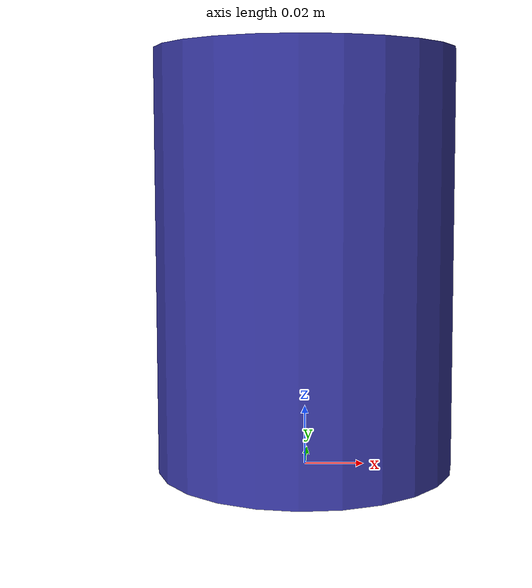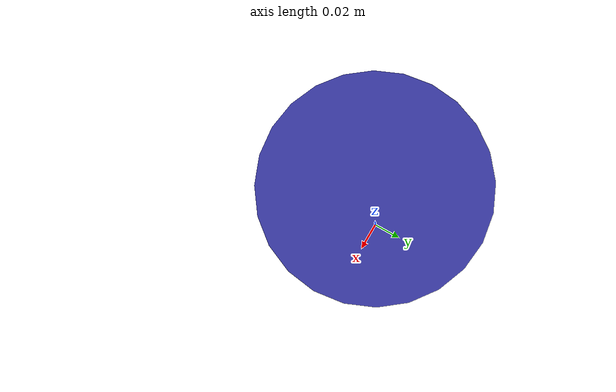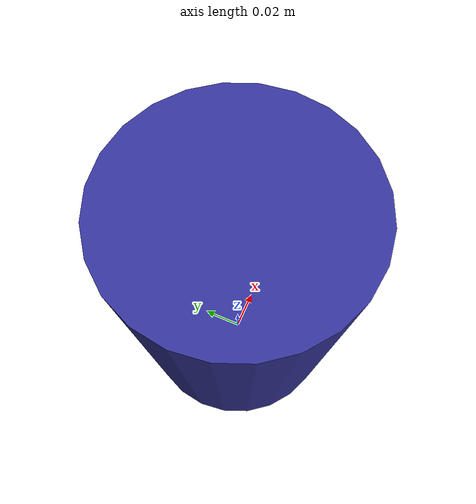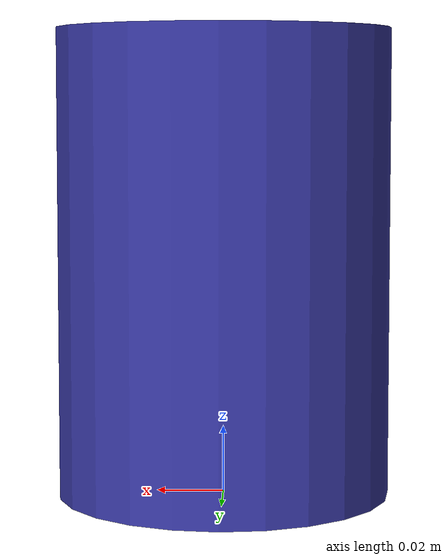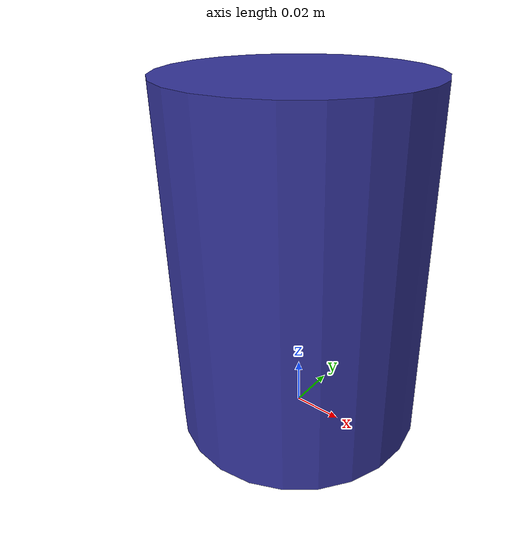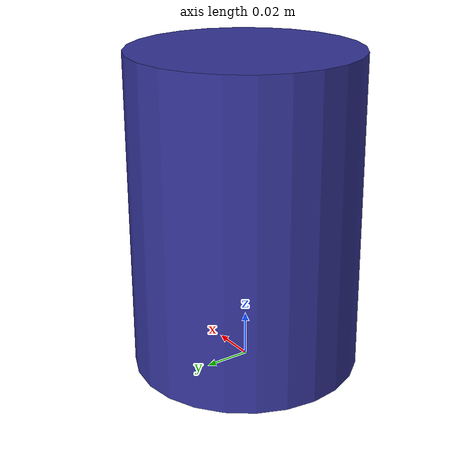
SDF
<sdf version="1.6">
    <model name="can">
        <allow_auto_disable>true</allow_auto_disable>
        <link name="link">
            <pose>0 0 0.07 0 0 0 0</pose>
            <inertial>
                <pose>0 0 -0.02 0 0 0 0</pose>
                <mass>2</mass>
                <inertia>
                    <ixx>0.00169375</ixx>
                    <iyy>0.00169375</iyy>
                    <izz>0.00093750</izz>
                </inertia>
            </inertial>
            <visual name="visual">
                <geometry>
                    <cylinder>
                        <radius>0.05</radius>
                        <length>0.14</length>
                    </cylinder>
                </geometry>
                <material>
                    <ambient>0.2 0.2 0.6 1.0</ambient>
                    <diffuse>0.2 0.2 0.6 1.0</diffuse>
                </material>
            </visual>
            <collision name="collision">
                <geometry>
                    <cylinder>
                        <radius>0.05</radius>
                        <length>0.14</length>
                    </cylinder>
                </geometry>
                <surface>
                    <friction>
                        <ode>
                            <mu>1.0</mu>
                            <mu2>1.0</mu2>
                        </ode>
                    </friction>
                    <contact>
                        <ode>
                            <kp>1e15</kp>
                            <kd>1e12</kd>
                        </ode>
                    </contact>
                </surface>
            </collision>
        </link>
    </model>
</sdf>
